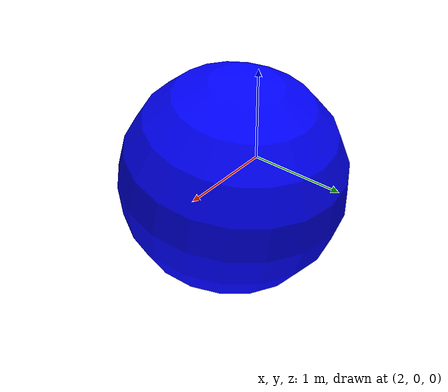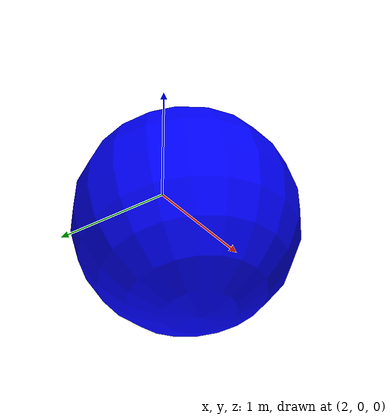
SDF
<?xml version="1.0"?>
<sdf version="1.9">
  <model name="sphere">
    <link name="body">
      <pose relative_to='__model__'>3 .5 .5 3 0 0</pose>
      <collision name="collision">
        <geometry>
          <sphere>
            <radius>1</radius>
          </sphere>
        </geometry>
      </collision>
      <visual name="visual">
        <geometry>
          <sphere>
            <radius>1</radius>
          </sphere>
        </geometry>
        <!-- add color to our link-->
        <material>
          <ambient>0.0 0.0 1.0 1</ambient>
          <diffuse>0.0 0.0 1.0 1</diffuse>
          <specular>0.0 0.0 1.0 1</specular>
        </material>
      </visual>
    </link>
  </model>
</sdf>
